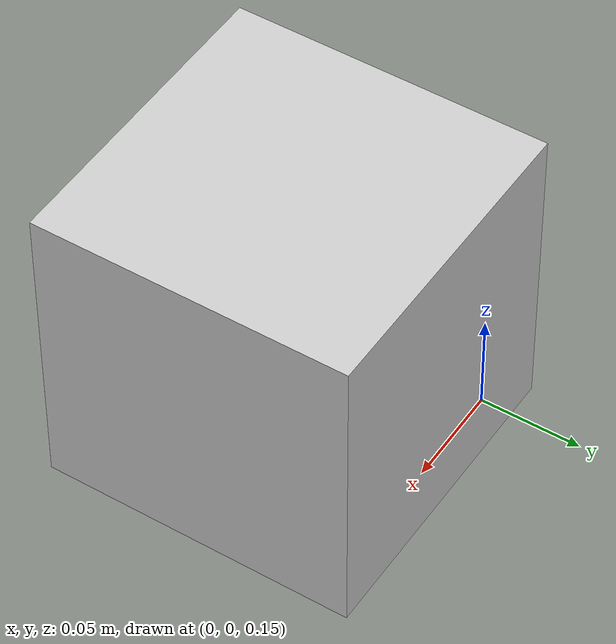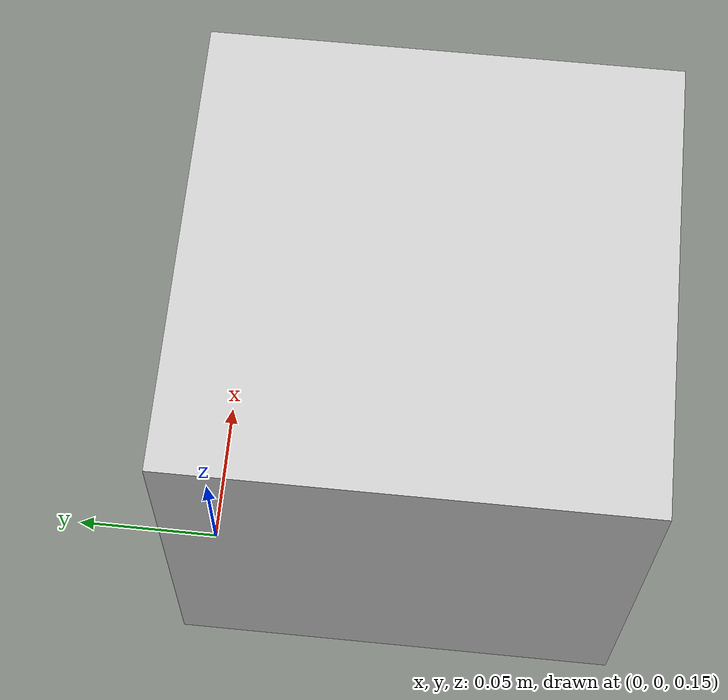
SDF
<?xml version="1.0" ?>
<sdf version="1.6">
  <model name="coca_block">
    <!-- dynamic, not static -->
    <static>false</static>
    <pose>0  0  0.2  1.5708  0    0</pose>

    <link name="new_link">
      <inertial>
        <mass>0.05</mass>
        <inertia>
          <ixx>0.0052</ixx><iyy>0.0052</iyy><izz>0.0052</izz>
          <ixy>0</ixy><ixz>0</ixz><iyz>0</iyz>
        </inertia>
      </inertial>
      <collision name="collision">
        <geometry>
          <mesh>
            <scale>0.1 0.1 0.1</scale>
            <uri>model://coca_block/meshes/coca_block.stl</uri>
          </mesh>
        </geometry>
        <surface>
          <friction>
            <ode><mu>1.2</mu><mu2>1.2</mu2></ode>
          </friction>
        </surface>
      </collision>
      <visual name="visual">
        <geometry>
          <mesh>
            <scale>0.1 0.1 0.1</scale>
            <uri>model://coca_block/meshes/coca_block.dae</uri>
          </mesh>
        </geometry>
      </visual>
    </link>
  </model>
</sdf>
